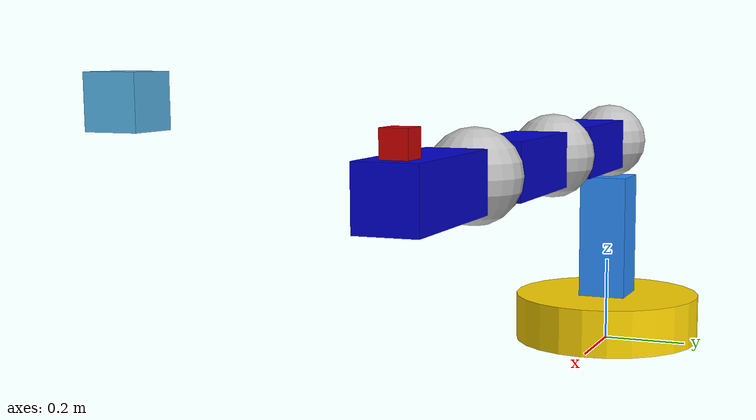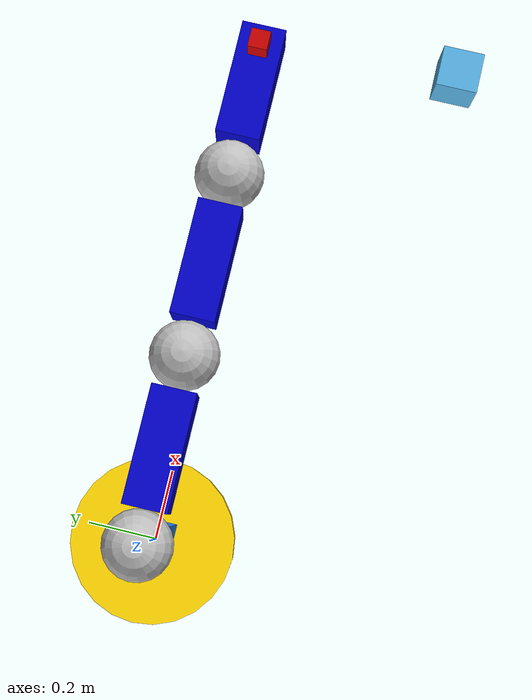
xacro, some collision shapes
<?xml version="1.0"?>
<robot name="robotic_arm" xmlns:xacro="http://www.ros.org/wiki/xacro">
  <!-- Constants for robot dimensions -->
  <xacro:property name="PI" value="3.1415926535897931"/>
  <xacro:property name="mass" value="1" /> <!-- arbitrary value for mass -->
  <xacro:property name="width" value="0.1" /> <!-- Square dimensions (widthxwidth) of beams -->
  <xacro:property name="height1" value="2" /> <!-- Link 1 -->
  <xacro:property name="height2" value="1" /> <!-- Link 2 -->
  <xacro:property name="height3" value="1" /> <!-- Link 3 -->
  <xacro:property name="camera_link" value="0.05" /> <!-- Size of square 'camera' box -->
  <xacro:property name="axel_offset" value="0.05" /> <!-- Space btw top of beam and the each joint -->
    <!-- Import all Gazebo-customization elements, including Gazebo colors -->

    <!-- Import all Gazebo-customization elements, including Gazebo colors -->

    <material name="black">
    <color rgba="0.0 0.0 0.0 1.0"/>
  </material>

  <material name="blue">
    <color rgba="0.0 0.0 0.8 1.0"/>
  </material>

  <material name="green">
    <color rgba="0.0 0.8 0.0 1.0"/>
  </material>

  <material name="grey">
    <color rgba="0.2 0.2 0.2 1.0"/>
  </material>

  <material name="orange">
    <color rgba="${255/255} ${108/255} ${10/255} 1.0"/>
  </material>

  <material name="brown">
    <color rgba="${222/255} ${207/255} ${195/255} 1.0"/>
  </material>

  <material name="red">
    <color rgba="0.8 0.0 0.0 1.0"/>
  </material>

  <material name="white">
    <color rgba="1.0 1.0 1.0 1.0"/>
  </material>

    <!--color-->
  <xacro:include filename="$(find g3_robot_description)/urdf/3jbot.gazebo" />

  <link name="world"/>
  <link name="base_link">
    <visual>
      <geometry>
        <cylinder length="0.115" radius="0.23"/>
      </geometry>
      <material name="gold">
        <color rgba="1 0.84 0 1"/>
      </material>
      <origin xyz="0 0 0.0575" rpy="0 0 0"/>
    </visual>
    <collision>
        <origin xyz="0 0 0.0575" rpy="0 0 0"/>
        <geometry>
	        <cylinder length="0.115" radius="0.23"/>
        </geometry>
    </collision>
    <inertial>
      <origin xyz="0 0 0.0575" rpy="0 0 0"/>
      <mass value="${mass}"/>
      <inertia
	    ixx="${mass / 12.0 * (width*width + height1*height1)}" ixy="0.0" ixz="0.0"
	    iyy="${mass / 12.0 * (height1*height1 + width*width)}" iyz="0.0"
	    izz="${mass / 12.0 * (width*width + width*width)}"/>
    </inertial>
  </link>

    <link name="stand1_link">
    <visual>
      <geometry>
        <box size= "0.115 0.115 0.3"/>
      </geometry>
      <material name="blue">
        <color rgba="0.17 0.56 1 1"/>
      </material>
      <origin xyz="0 0 0.265" rpy="0 0 0"/>
    </visual>
        <collision>
        <origin xyz="0 0 0.265" rpy="0 0 0"/>
        <geometry>
	        <box size= "0.115 0.115 0.3"/>
        </geometry>
    </collision>
    <inertial>
      <origin xyz="0 0 0.265" rpy="0 0 0"/>
      <mass value="${mass}"/>
      <inertia
	    ixx="${mass / 12.0 * (width*width + height1*height1)}" ixy="0.0" ixz="0.0"
	    iyy="${mass / 12.0 * (height1*height1 + width*width)}" iyz="0.0"
	    izz="${mass / 12.0 * (width*width + width*width)}"/>
    </inertial>
  </link>

    <joint name="base_to_stand1" type="continuous">
      <axis xyz="0 0 1"/>
    <parent link="base_link"/>
    <child link="stand1_link"/>
    <origin xyz="0 0 0"/>
     </joint>

  <link name="joint1_link">
    <visual>
      <geometry>
        <sphere radius="0.09"/>
      </geometry>
      <material name="silver">
        <color rgba="0.753 0.753 0.753 1"/>
      </material>
      <origin xyz="0 0 0" rpy="0 0 0"/>
    </visual>
        <collision>
        <origin xyz="0 0 0" rpy="0 0 0"/>
        <geometry>
	        <sphere radius="0.09"/>
        </geometry>
    </collision>
    <inertial>
      <origin xyz="0 0 0" rpy="0 0 0"/>
      <mass value="${mass}"/>
      <inertia
	    ixx="${mass / 12.0 * (width*width + height1*height1)}" ixy="0.0" ixz="0.0"
	    iyy="${mass / 12.0 * (height1*height1 + width*width)}" iyz="0.0"
	    izz="${mass / 12.0 * (width*width + width*width)}"/>
    </inertial>
  </link>

    <joint name="stand1_to_joint1" type="continuous">
    <parent link="stand1_link"/>
    <child link="joint1_link"/>
   <origin xyz="0 0 0.503" rpy="0 0 0"/>
        <axis xyz="0 1 0" rpy="0 0 0"/>
        <!--limit lower="-3.1416" upper="3.1416" effort="10" velocity="3"/-->
      </joint>

<link name="stand2_link">
    <visual>
      <geometry>
        <box size= "0.3 0.115 0.115"/>
      </geometry>
      <material name="blue">
      </material>
      <origin xyz="0.24 0 0" rpy="0 0 0"/>
    </visual>
        <collision>
        <origin xyz="0.24 0 0" rpy="0 0 0"/>
        <geometry>
	        <box size= "0.3 0.115 0.115"/>
        </geometry>
    </collision>
    <inertial>
      <origin xyz="0.24 0 0" rpy="0 0 0"/>
      <mass value="${mass}"/>
      <inertia
	    ixx="${mass / 12.0 * (width*width + height1*height1)}" ixy="0.0" ixz="0.0"
	    iyy="${mass / 12.0 * (height1*height1 + width*width)}" iyz="0.0"
	    izz="${mass / 12.0 * (width*width + width*width)}"/>
    </inertial>
  </link>

  <joint name = "wolrd_to_base_link" type = "fixed">
  <parent link = "world"/>
  <child link = "base_link"/>
  <origin xyz = "0 0 0" rpy = "0 0 0"/>
  </joint>

<joint name="joint1_to_stand2" type="fixed">
        <parent link="joint1_link"/>
        <child link="stand2_link"/>
        <origin xyz="0 0 0" rpy="0 0 0"/>
 </joint>

<link name="joint2_link">
    <visual>
      <geometry>
        <sphere radius="0.09"/>
      </geometry>
      <material name="silver">
      </material>
      <origin xyz="0 0 0" rpy="0 0 0"/>
    </visual>
        <collision>
        <origin xyz="0 0 0" rpy="0 0 0"/>
        <geometry>
	        <sphere radius="0.09"/>
        </geometry>
    </collision>
    <inertial>
      <origin xyz="0 0 0" rpy="0 0 0"/>
      <mass value="${mass}"/>
      <inertia
	    ixx="${mass / 12.0 * (width*width + height1*height1)}" ixy="0.0" ixz="0.0"
	    iyy="${mass / 12.0 * (height1*height1 + width*width)}" iyz="0.0"
	    izz="${mass / 12.0 * (width*width + width*width)}"/>
    </inertial>
  </link>

  <joint name="stand2_to_joint2" type="continuous">
    <parent link="stand2_link"/>
    <child link="joint2_link"/>
   <origin xyz="0.48 0 0" rpy="0 0 0"/>
        <axis xyz="0 1 0" rpy="0 0 0"/>
        <!--limit lower="-3.1416" upper="3.1416" effort="10" velocity="3"/-->
      </joint>
<link name="stand3_link">
    <visual>
      <geometry>
        <box size= "0.3 0.115 0.115"/>
      </geometry>
      <material name="blue">
      </material>
      <origin xyz="0.24 0 0" rpy="0 0 0"/>
    </visual>
        <collision>
        <origin xyz="0.24 0 0" rpy="0 0 0"/>
        <geometry>
	        <box size= "0.3 0.115 0.115"/>
        </geometry>
    </collision>
    <inertial>
      <origin xyz="0.24 0 0" rpy="0 0 0"/>
      <mass value="${mass}"/>
      <inertia
	    ixx="${mass / 12.0 * (width*width + height1*height1)}" ixy="0.0" ixz="0.0"
	    iyy="${mass / 12.0 * (height1*height1 + width*width)}" iyz="0.0"
	    izz="${mass / 12.0 * (width*width + width*width)}"/>
    </inertial>
  </link>

<joint name="joint2_to_stand3" type="fixed">
        <parent link="joint2_link"/>
        <child link="stand3_link"/>
        <origin xyz="0 0 0" rpy="0 0 0"/>
 </joint>

<link name="joint3_link">
    <visual>
      <geometry>
        <sphere radius="0.09"/>
      </geometry>
      <material name="silver">
      </material>
      <origin xyz="0 0 0" rpy="0 0 0"/>
    </visual>
        <collision>
        <origin xyz="0 0 0" rpy="0 0 0"/>
        <geometry>
	        <sphere radius="0.09"/>
        </geometry>
    </collision>
    <inertial>
      <origin xyz="0 0 0" rpy="0 0 0"/>
      <mass value="${mass}"/>
      <inertia
	    ixx="${mass / 12.0 * (width*width + height1*height1)}" ixy="0.0" ixz="0.0"
	    iyy="${mass / 12.0 * (height1*height1 + width*width)}" iyz="0.0"
	    izz="${mass / 12.0 * (width*width + width*width)}"/>
    </inertial>
  </link>

  <joint name="stand3_to_joint3" type="continuous">
    <parent link="stand3_link"/>
    <child link="joint3_link"/>
   <origin xyz="0.48 0 0" rpy="0 0 0"/>
        <axis xyz="0 1 0" rpy="0 0 0"/>
        <!--limit lower="-3.1416" upper="3.1416" effort="10" velocity="3"/-->
      </joint>

<link name="stand4_link">
    <visual>
      <geometry>
        <box size= "0.3 0.115 0.115"/>
      </geometry>
      <material name="blue">
      </material>
      <origin xyz="0.24 0 0" rpy="0 0 0"/>
    </visual>
        <collision>
        <origin xyz="0.24 0 0" rpy="0 0 0"/>
        <geometry>
	        <box size= "0.3 0.115 0.115"/>
        </geometry>
    </collision>
    <inertial>
      <origin xyz="0.24 0 0" rpy="0 0 0"/>
      <mass value="${mass}"/>
      <inertia
	    ixx="${mass / 12.0 * (width*width + height1*height1)}" ixy="0.0" ixz="0.0"
	    iyy="${mass / 12.0 * (height1*height1 + width*width)}" iyz="0.0"
	    izz="${mass / 12.0 * (width*width + width*width)}"/>
    </inertial>
  </link>

<joint name="joint3_to_stand4" type="fixed">
        <parent link="joint3_link"/>
        <child link="stand4_link"/>
        <origin xyz="0 0 0" rpy="0 0 0"/>
 </joint>

<!--add link_join camera-->

  <joint name="hokuyo_joint" type="fixed">
    <axis xyz="0 1 0" />
    <origin xyz="0.33 0 ${height3 - axel_offset*17.2}" rpy="0 0 0"/>
    <parent link="stand4_link"/>
    <child link="hokuyo_link"/>
  </joint>

  <!-- Hokuyo Laser -->
  <link name="hokuyo_link">
    <collision>
      <origin xyz="0 -0.5 0" rpy="0 0 0"/>
      <geometry>
	<box size="0.1 0.1 0.1"/>
      </geometry>
    </collision>

    <visual>
      <origin xyz="0 0 0" rpy="0 0 0"/>
      <geometry>
        <mesh filename="package://g3_robot_description/meshes/hokuyo.dae"/>
      </geometry>
    </visual>

    <inertial>
      <mass value="1e-5" />
      <origin xyz="0 0 0" rpy="0 0 0"/>
      <inertia ixx="1e-6" ixy="0" ixz="0" iyy="1e-6" iyz="0" izz="1e-6" />
    </inertial>
  </link>

  <joint name="camera_joint" type="fixed">
    <axis xyz="0 1 0" />
    <origin xyz="0.33 0 ${height3 - axel_offset*18.35}" rpy="0 0 0"/>
    <parent link="stand4_link"/>
    <child link="camera_link"/>
  </joint>

  <!-- Camera -->
  <link name="camera_link">
    <collision>
      <origin xyz="0 0 0" rpy="0 0 0"/>
      <geometry>
	<box size="${camera_link} ${camera_link} ${camera_link}"/>
      </geometry>
    </collision>

    <visual>
      <origin xyz="0 0 0" rpy="0 0 0"/>
      <geometry>
	<box size="${camera_link} ${camera_link} ${camera_link}"/>
      </geometry>
      <material name="red"/>
    </visual>

    <inertial>
      <mass value="1e-5" />
      <origin xyz="0 0 0" rpy="0 0 0"/>
      <inertia ixx="1e-6" ixy="0" ixz="0" iyy="1e-6" iyz="0" izz="1e-6" />
    </inertial>
  </link>

  <!-- generate an optical frame http://www.ros.org/reps/rep-0103.html#suffix-frames
      so that ros and opencv can operate on the camera frame correctly -->
  <joint name="camera_optical_joint" type="fixed">
    <!-- these values have to be these values otherwise the gazebo camera image
        won't be aligned properly with the frame it is supposedly originating from -->
    <origin xyz="0 0 0" rpy="${-pi/2} 0 ${-pi/2}"/>
    <parent link="camera_link"/>
    <child link="camera_link_optical"/>
  </joint>

  <link name="camera_link_optical">
  </link>

 <!--end link join camera-->

   <transmission name="tran1">
    <type>transmission_interface/SimpleTransmission</type>
    <joint name="base_to_stand1">
      <hardwareInterface>hardware_interface/EffortJointInterface</hardwareInterface>
    </joint>
    <actuator name="motor1">
      <hardwareInterface>hardware_interface/EffortJointInterface</hardwareInterface>
      <mechanicalReduction>1</mechanicalReduction>
    </actuator>
  </transmission>

   <transmission name="tran2">
    <type>transmission_interface/SimpleTransmission</type>
    <joint name="stand1_to_joint1">
      <hardwareInterface>hardware_interface/EffortJointInterface</hardwareInterface>
    </joint>
    <actuator name="motor2">
      <hardwareInterface>hardware_interface/EffortJointInterface</hardwareInterface>
      <mechanicalReduction>1</mechanicalReduction>
    </actuator>
  </transmission>

  <transmission name="tran3">
    <type>transmission_interface/SimpleTransmission</type>
    <joint name="stand2_to_joint2">
      <hardwareInterface>hardware_interface/EffortJointInterface</hardwareInterface>
    </joint>
    <actuator name="motor3">
      <hardwareInterface>hardware_interface/EffortJointInterface</hardwareInterface>
      <mechanicalReduction>1</mechanicalReduction>
    </actuator>
  </transmission>

    <transmission name="tran4">
    <type>transmission_interface/SimpleTransmission</type>
    <joint name="stand3_to_joint3">
      <hardwareInterface>hardware_interface/EffortJointInterface</hardwareInterface>
    </joint>
    <actuator name="motor4">
      <hardwareInterface>hardware_interface/EffortJointInterface</hardwareInterface>
      <mechanicalReduction>1</mechanicalReduction>
    </actuator>
  </transmission>

</robot>
